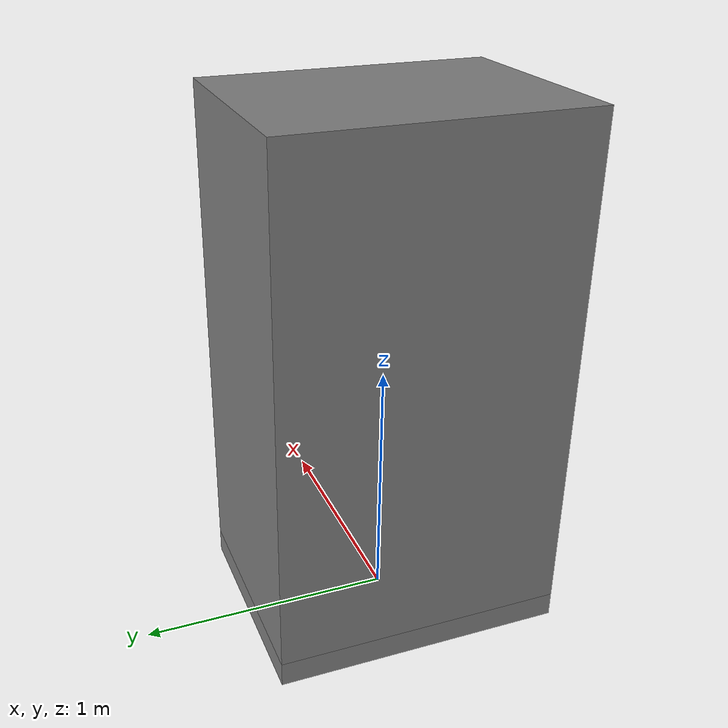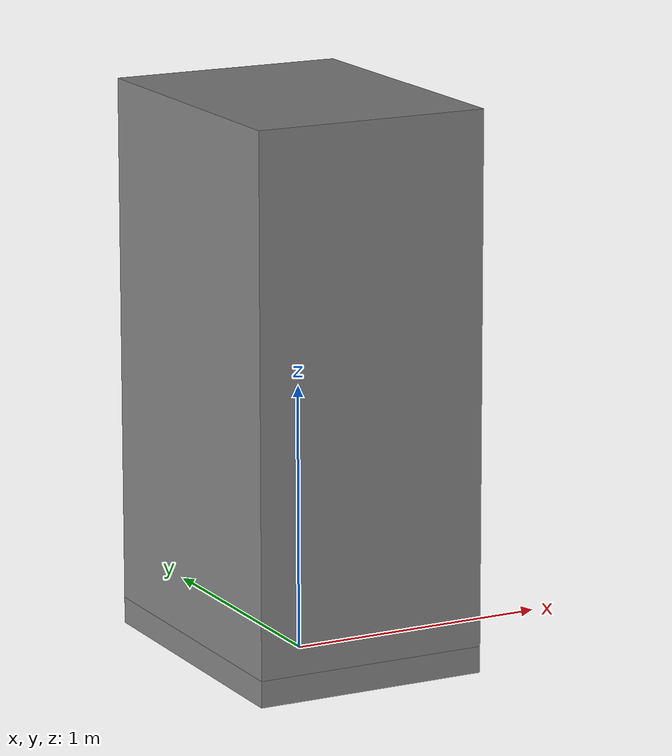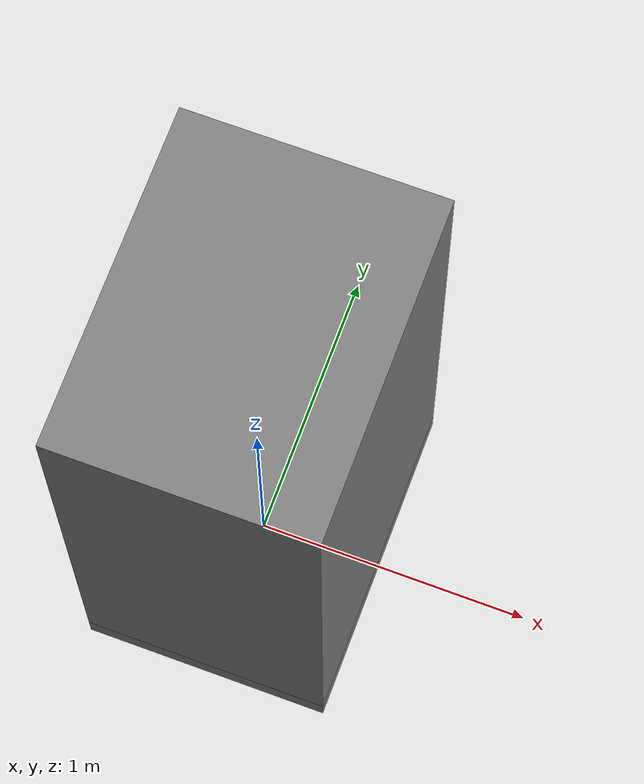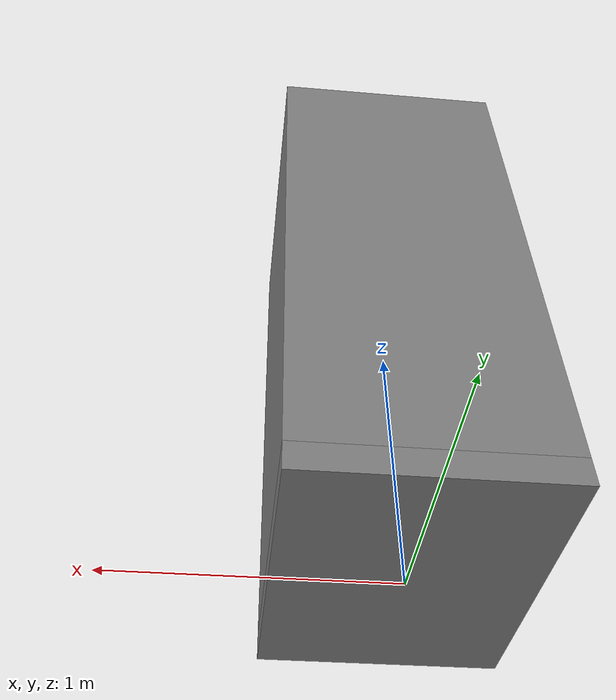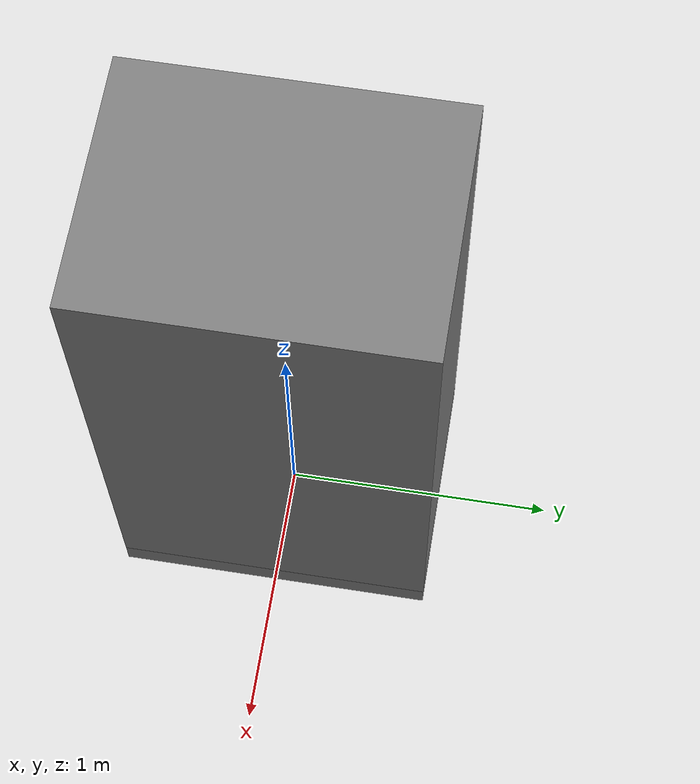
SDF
<?xml version="1.0" ?>
<sdf version="1.4">
    <model name='full_wall_890_1160_2090'>
      <link name='link'>
        <inertial>
          <mass>50</mass>
          <inertia>
            <ixx>1</ixx>
            <ixy>0</ixy>
            <ixz>0</ixz>
            <iyy>1</iyy>
            <iyz>0</iyz>
            <izz>1</izz>
          </inertia>
        </inertial>
        <visual name='bottom_frame'>
          <pose>0 0 0.05 0 0 0</pose>
          <geometry>
            <box>
              <size>0.890 1.160 0.1</size>
            </box>
          </geometry>
          <material>
            <!-- hsr_color/white -->
            <name>white</name>
            <ambient>1 1 1 1</ambient>
            <diffuse>0.5 0.5 0.5 1</diffuse>
            <specular>0 0 0 1</specular>
            <emissive>0 0 0 1</emissive>
            <shading>gouraud</shading>
            <receive_shadows>on</receive_shadows>
          </material>
        </visual>
        <collision name='collision_bottom_frame'>
          <pose>0 0 0.05 0 0 0</pose>
          <geometry>
            <box>
              <size>0.890 1.160 0.1</size>
            </box>
          </geometry>
          <max_contacts>10</max_contacts>
          <surface>
            <bounce/>
            <friction>
              <ode/>
            </friction>
            <contact>
              <ode/>
            </contact>
          </surface>
        </collision>
        <visual name='wall'>
          <pose>0 0 1.095 0 0 0</pose>
          <geometry>
            <box>
              <size>0.890 1.160 1.99</size>
            </box>
          </geometry>
          <material>
            <!-- wall/white_noise -->
            <name>white_noise</name>
            <ambient>1 1 1 1</ambient>
            <diffuse>0.5 0.5 0.5 1.0</diffuse>
            <specular>0 0 0 1.0</specular>
            <shininess>12.5</shininess>
            <pbr>
              <metal>
                <albedo_map>model://base_materials/wall/textures/wall_white_noise.png</albedo_map>
                <max_anisotropy>16</max_anisotropy>
                <metalness>0</metalness>
              </metal>
            </pbr>
          </material>
        </visual>
        <collision name='collision_wall'>
          <pose>0 0 1.095 0 0 0</pose>
          <geometry>
            <box>
              <size>0.890 1.160 1.99</size>
            </box>
          </geometry>
          <max_contacts>10</max_contacts>
          <surface>
            <bounce/>
            <friction>
              <ode/>
            </friction>
            <contact>
              <ode/>
            </contact>
          </surface>
        </collision>
        <velocity_decay>
          <linear>0</linear>
          <angular>0</angular>
        </velocity_decay>
        <self_collide>0</self_collide>
        <kinematic>0</kinematic>
        <gravity>1</gravity>
      </link>
      <static>1</static>
    </model>
</sdf>
